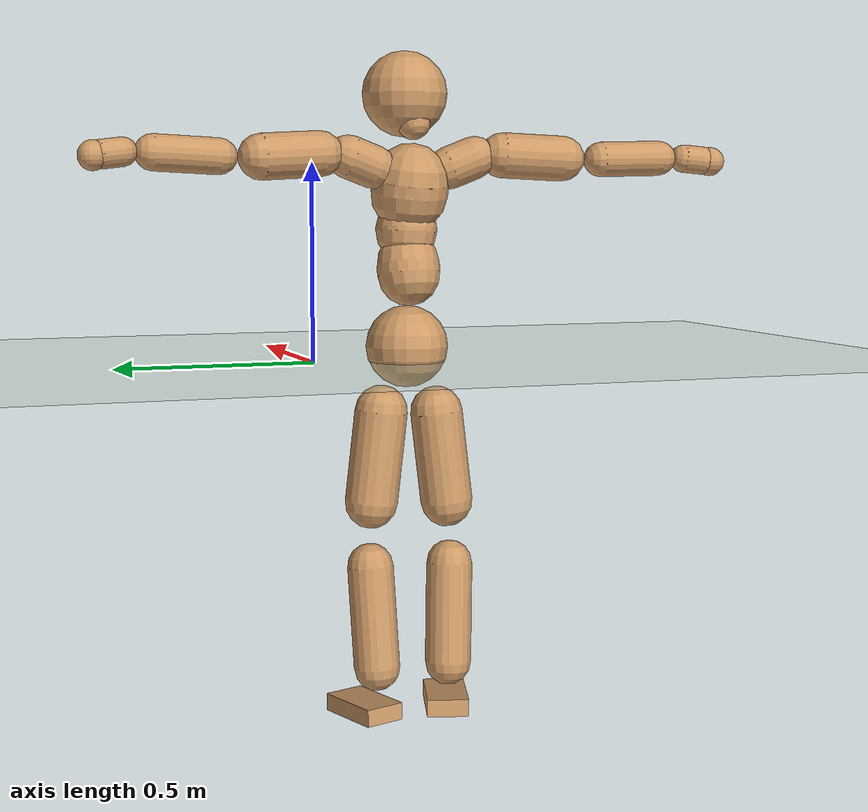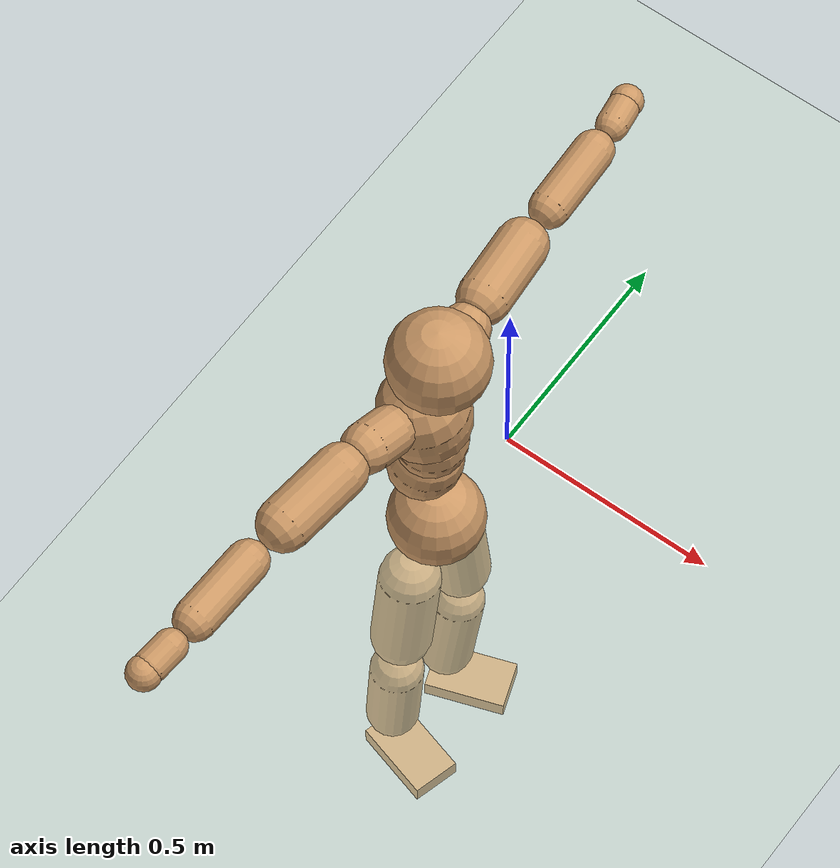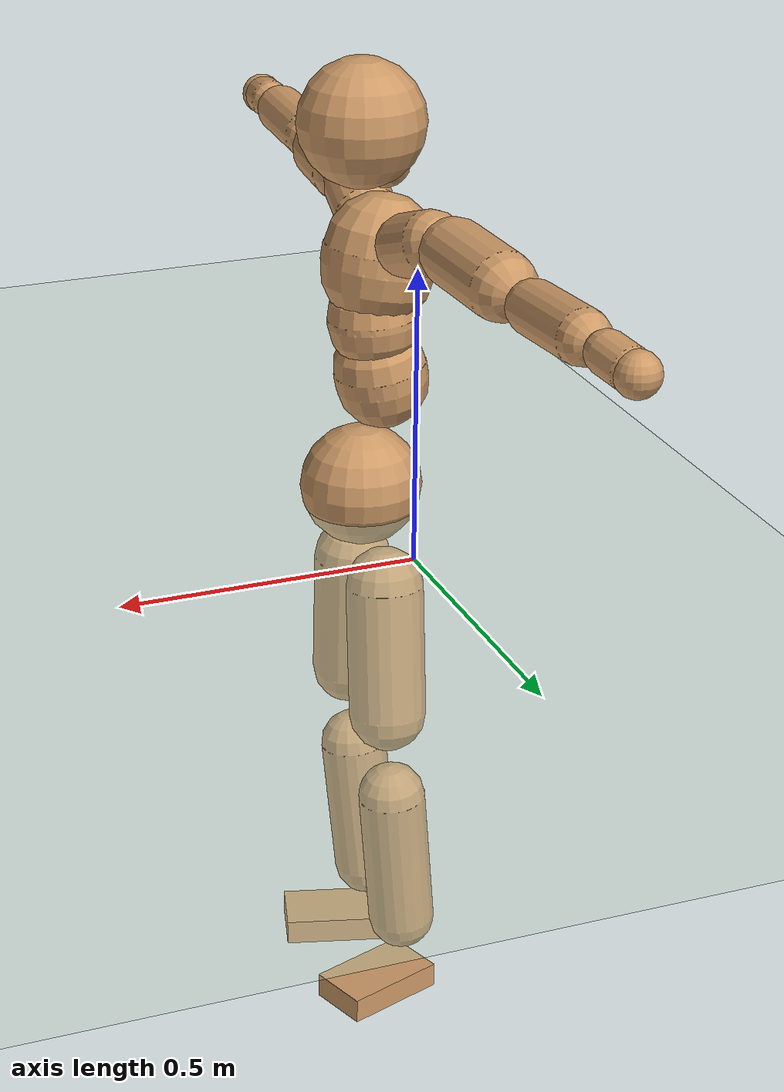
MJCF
<mujoco model="humanoid">
  <compiler coordinate="local"/>
  <default>
    <joint damping="0.0" armature="0.01" stiffness="0.0" limited="true"/>
    <geom conaffinity="1" condim="3" contype="7" margin="0.001" rgba="0.8 0.6 .4 1"/>
  </default>
  <asset>
    <texture type="skybox" builtin="gradient" rgb1=".4 .5 .6" rgb2="0 0 0" width="100" height="100"/>
    <texture builtin="flat" height="1278" mark="cross" markrgb="1 1 1" name="texgeom" random="0.01" rgb1="0.8 0.6 0.4" rgb2="0.8 0.6 0.4" type="cube" width="127"/>
    <texture builtin="checker" height="100" name="texplane" rgb1="0 0 0" rgb2="0.8 0.8 0.8" type="2d" width="100"/>
    <material name="MatPlane" reflectance="0.5" shininess="1" specular="1" texrepeat="60 60" texture="texplane"/>
    <material name="geom" texture="texgeom" texuniform="true"/>
  </asset>
  <worldbody>
    <light cutoff="100" diffuse="1 1 1" dir="-0 0 -1.3" directional="true" exponent="1" pos="0 0 1.3" specular=".1 .1 .1"/>
    <geom conaffinity="1" condim="3" name="floor" pos="0 0 0" rgba="0.8 0.9 0.8 1" size="100 100 .2" type="plane" material="MatPlane"/>
    <body name="Pelvis" pos="-0.0009 -0.2475 0.0358">
      <freejoint name="Pelvis"/>
      <geom type="sphere" contype="1" conaffinity="1" density="500" size="0.1048" pos="0.0000 0.0000 0.0000" name="Pelvis"/>
      <body name="L_Hip" pos="-0.0163 0.0653 -0.0851">
        <joint name="L_Hip_x" type="hinge" pos="0 0 0" axis="1 0 0" stiffness="800" damping="80" armature="0.02" range="-180.0000 180.0000"/>
        <joint name="L_Hip_y" type="hinge" pos="0 0 0" axis="0 1 0" stiffness="800" damping="80" armature="0.02" range="-180.0000 180.0000"/>
        <joint name="L_Hip_z" type="hinge" pos="0 0 0" axis="0 0 1" stiffness="800" damping="80" armature="0.02" range="-180.0000 180.0000"/>
        <geom type="capsule" contype="1" conaffinity="1" density="500" fromto="0.0010 0.0087 -0.0780 0.0040 0.0347 -0.3120" size="0.0674" name="L_Hip"/>
        <body name="L_Knee" pos="0.005 0.0433 -0.39">
          <joint name="L_Knee_x" type="hinge" pos="0 0 0" axis="1 0 0" stiffness="800" damping="80" armature="0.02" range="-180.0000 180.0000"/>
          <joint name="L_Knee_y" type="hinge" pos="0 0 0" axis="0 1 0" stiffness="800" damping="80" armature="0.02" range="-180.0000 180.0000"/>
          <joint name="L_Knee_z" type="hinge" pos="0 0 0" axis="0 0 1" stiffness="800" damping="80" armature="0.02" range="-180.0000 180.0000"/>
          <geom type="capsule" contype="1" conaffinity="1" density="500" fromto="-0.0080 -0.0032 -0.0870 -0.0322 -0.0127 -0.3481" size="0.0591" name="L_Knee"/>
          <body name="L_Ankle" pos="-0.0402 -0.0158 -0.4352">
            <joint name="L_Ankle_x" type="hinge" pos="0 0 0" axis="1 0 0" stiffness="800" damping="80" armature="0.02" range="-180.0000 180.0000"/>
            <joint name="L_Ankle_y" type="hinge" pos="0 0 0" axis="0 1 0" stiffness="800" damping="80" armature="0.02" range="-180.0000 180.0000"/>
            <joint name="L_Ankle_z" type="hinge" pos="0 0 0" axis="0 0 1" stiffness="800" damping="80" armature="0.02" range="-180.0000 180.0000"/>
            <geom type="box" contype="1" conaffinity="1" density="500" pos="0.0622 0.0214 -0.0309" size="0.0916 0.0545 0.0222" quat="0.9863 0.0000 0.0000 0.1652" name="L_Ankle"/>
            <body name="L_Toe" pos="0.1244 0.0429 -0.0618">
              <joint name="L_Toe_x" type="hinge" pos="0 0 0" axis="1 0 0" stiffness="500" damping="50" armature="0.02" range="-180.0000 180.0000"/>
              <joint name="L_Toe_y" type="hinge" pos="0 0 0" axis="0 1 0" stiffness="500" damping="50" armature="0.02" range="-180.0000 180.0000"/>
              <joint name="L_Toe_z" type="hinge" pos="0 0 0" axis="0 0 1" stiffness="500" damping="50" armature="0.02" range="-180.0000 180.0000"/>
              <geom type="box" contype="1" conaffinity="1" density="500" pos="0.0000 0.0000 0.0302" size="0.0011 0.0026 0.0011" quat="0.9855 0.0000 0.0000 0.1698" name="L_Toe"/>
            </body>
          </body>
        </body>
      </body>
      <body name="R_Hip" pos="-0.0116 -0.0669 -0.0931">
        <joint name="R_Hip_x" type="hinge" pos="0 0 0" axis="1 0 0" stiffness="800" damping="80" armature="0.02" range="-180.0000 180.0000"/>
        <joint name="R_Hip_y" type="hinge" pos="0 0 0" axis="0 1 0" stiffness="800" damping="80" armature="0.02" range="-180.0000 180.0000"/>
        <joint name="R_Hip_z" type="hinge" pos="0 0 0" axis="0 0 1" stiffness="800" damping="80" armature="0.02" range="-180.0000 180.0000"/>
        <geom type="capsule" contype="1" conaffinity="1" density="500" fromto="-0.0016 -0.0088 -0.0776 -0.0066 -0.0351 -0.3102" size="0.0669" name="R_Hip"/>
        <body name="R_Knee" pos="-0.0082 -0.0439 -0.3878">
          <joint name="R_Knee_x" type="hinge" pos="0 0 0" axis="1 0 0" stiffness="800" damping="80" armature="0.02" range="-180.0000 180.0000"/>
          <joint name="R_Knee_y" type="hinge" pos="0 0 0" axis="0 1 0" stiffness="800" damping="80" armature="0.02" range="-180.0000 180.0000"/>
          <joint name="R_Knee_z" type="hinge" pos="0 0 0" axis="0 0 1" stiffness="800" damping="80" armature="0.02" range="-180.0000 180.0000"/>
          <geom type="capsule" contype="1" conaffinity="1" density="500" fromto="-0.0076 0.0038 -0.0856 -0.0305 0.0151 -0.3423" size="0.0593" name="R_Knee"/>
          <body name="R_Ankle" pos="-0.0382 0.0189 -0.4279">
            <joint name="R_Ankle_x" type="hinge" pos="0 0 0" axis="1 0 0" stiffness="800" damping="80" armature="0.02" range="-180.0000 180.0000"/>
            <joint name="R_Ankle_y" type="hinge" pos="0 0 0" axis="0 1 0" stiffness="800" damping="80" armature="0.02" range="-180.0000 180.0000"/>
            <joint name="R_Ankle_z" type="hinge" pos="0 0 0" axis="0 0 1" stiffness="800" damping="80" armature="0.02" range="-180.0000 180.0000"/>
            <geom type="box" contype="1" conaffinity="1" density="500" pos="0.0665 -0.0188 -0.0311" size="0.0932 0.054 0.0226" quat="0.9905 0.0000 0.0000 -0.1374" name="R_Ankle"/>
            <body name="R_Toe" pos="0.1331 -0.0377 -0.0623">
              <joint name="R_Toe_x" type="hinge" pos="0 0 0" axis="1 0 0" stiffness="500" damping="50" armature="0.02" range="-180.0000 180.0000"/>
              <joint name="R_Toe_y" type="hinge" pos="0 0 0" axis="0 1 0" stiffness="500" damping="50" armature="0.02" range="-180.0000 180.0000"/>
              <joint name="R_Toe_z" type="hinge" pos="0 0 0" axis="0 0 1" stiffness="500" damping="50" armature="0.02" range="-180.0000 180.0000"/>
              <geom type="box" contype="1" conaffinity="1" density="500" pos="0.0000 0.0000 0.0319" size="0.0011 0.0026 0.0012" quat="0.9917 0.0000 0.0000 -0.1287" name="R_Toe"/>
            </body>
          </body>
        </body>
      </body>
      <body name="Torso" pos="-0.0458 0.0046 0.129">
        <joint name="Torso_x" type="hinge" pos="0 0 0" axis="1 0 0" stiffness="1000" damping="100" armature="0.02" range="-180.0000 180.0000"/>
        <joint name="Torso_y" type="hinge" pos="0 0 0" axis="0 1 0" stiffness="1000" damping="100" armature="0.02" range="-180.0000 180.0000"/>
        <joint name="Torso_z" type="hinge" pos="0 0 0" axis="0 0 1" stiffness="1000" damping="100" armature="0.02" range="-180.0000 180.0000"/>
        <geom type="capsule" contype="1" conaffinity="1" density="500" fromto="0.0157 0.0025 0.0835 0.0105 0.0017 0.0556" size="0.079236" name="Torso"/>
        <body name="Spine" pos="0.0262 0.0042 0.1391">
          <joint name="Spine_x" type="hinge" pos="0 0 0" axis="1 0 0" stiffness="1000" damping="100" armature="0.02" range="-180.0000 180.0000"/>
          <joint name="Spine_y" type="hinge" pos="0 0 0" axis="0 1 0" stiffness="1000" damping="100" armature="0.02" range="-180.0000 180.0000"/>
          <joint name="Spine_z" type="hinge" pos="0 0 0" axis="0 0 1" stiffness="1000" damping="100" armature="0.02" range="-180.0000 180.0000"/>
          <geom type="capsule" contype="1" conaffinity="1" density="500" fromto="0.0019 -0.0018 0.0343 0.0013 -0.0012 0.0229" size="0.07719" name="Spine"/>
          <body name="Chest" pos="0.0031 -0.003 0.0571">
            <joint name="Chest_x" type="hinge" pos="0 0 0" axis="1 0 0" stiffness="1000" damping="100" armature="0.02" range="-180.0000 180.0000"/>
            <joint name="Chest_y" type="hinge" pos="0 0 0" axis="0 1 0" stiffness="1000" damping="100" armature="0.02" range="-180.0000 180.0000"/>
            <joint name="Chest_z" type="hinge" pos="0 0 0" axis="0 0 1" stiffness="1000" damping="100" armature="0.02" range="-180.0000 180.0000"/>
            <geom type="capsule" contype="1" conaffinity="1" density="500" fromto="-0.0167 -0.0046 0.0907 -0.0112 -0.0031 0.0605" size="0.096999" name="Chest"/>
            <body name="Neck" pos="-0.036 -0.0119 0.2194">
              <joint name="Neck_x" type="hinge" pos="0 0 0" axis="1 0 0" stiffness="500" damping="50" armature="0.02" range="-180.0000 180.0000"/>
              <joint name="Neck_y" type="hinge" pos="0 0 0" axis="0 1 0" stiffness="500" damping="50" armature="0.02" range="-180.0000 180.0000"/>
              <joint name="Neck_z" type="hinge" pos="0 0 0" axis="0 0 1" stiffness="500" damping="50" armature="0.02" range="-180.0000 180.0000"/>
              <geom type="capsule" contype="1" conaffinity="1" density="500" fromto="0.0109 0.0022 0.0181 0.0438 0.0087 0.0724" size="0.042873" name="Neck"/>
              <body name="Head" pos="0.0547 0.0108 0.0905">
                <joint name="Head_x" type="hinge" pos="0 0 0" axis="1 0 0" stiffness="500" damping="50" armature="0.02" range="-180.0000 180.0000"/>
                <joint name="Head_y" type="hinge" pos="0 0 0" axis="0 1 0" stiffness="500" damping="50" armature="0.02" range="-180.0000 180.0000"/>
                <joint name="Head_z" type="hinge" pos="0 0 0" axis="0 0 1" stiffness="500" damping="50" armature="0.02" range="-180.0000 180.0000"/>
                <geom type="sphere" contype="1" conaffinity="1" density="500" size="0.1073" pos="0.0000 0.0000 0.0000" name="Head"/>
              </body>
            </body>
            <body name="L_Thorax" pos="-0.0214 0.0687 0.1178">
              <joint name="L_Thorax_x" type="hinge" pos="0 0 0" axis="1 0 0" stiffness="500" damping="50" armature="0.02" range="-180.0000 180.0000"/>
              <joint name="L_Thorax_y" type="hinge" pos="0 0 0" axis="0 1 0" stiffness="500" damping="50" armature="0.02" range="-180.0000 180.0000"/>
              <joint name="L_Thorax_z" type="hinge" pos="0 0 0" axis="0 0 1" stiffness="500" damping="50" armature="0.02" range="-180.0000 180.0000"/>
              <geom type="capsule" contype="1" conaffinity="1" density="500" fromto="-0.0039 0.0238 0.0085 -0.0155 0.0951 0.0340" size="0.0536" name="L_Thorax"/>
              <body name="L_Shoulder" pos="-0.0194 0.1188 0.0425">
                <joint name="L_Shoulder_x" type="hinge" pos="0 0 0" axis="1 0 0" stiffness="500" damping="50" armature="0.02" range="-720.0000 720.0000"/>
                <joint name="L_Shoulder_y" type="hinge" pos="0 0 0" axis="0 1 0" stiffness="500" damping="50" armature="0.02" range="-720.0000 720.0000"/>
                <joint name="L_Shoulder_z" type="hinge" pos="0 0 0" axis="0 0 1" stiffness="500" damping="50" armature="0.02" range="-720.0000 720.0000"/>
                <geom type="capsule" contype="1" conaffinity="1" density="500" fromto="-0.0047 0.0501 -0.0028 -0.0190 0.2005 -0.0111" size="0.0567" name="L_Shoulder"/>
                <body name="L_Elbow" pos="-0.0237 0.2507 -0.0139">
                  <joint name="L_Elbow_x" type="hinge" pos="0 0 0" axis="1 0 0" stiffness="500" damping="50" armature="0.02" range="-720.0000 720.0000"/>
                  <joint name="L_Elbow_y" type="hinge" pos="0 0 0" axis="0 1 0" stiffness="500" damping="50" armature="0.02" range="-720.0000 720.0000"/>
                  <joint name="L_Elbow_z" type="hinge" pos="0 0 0" axis="0 0 1" stiffness="500" damping="50" armature="0.02" range="-720.0000 720.0000"/>
                  <geom type="capsule" contype="1" conaffinity="1" density="500" fromto="-0.0014 0.0531 0.0026 -0.0055 0.2123 0.0106" size="0.0438" name="L_Elbow"/>
                  <body name="L_Wrist" pos="-0.0068 0.2654 0.0132">
                    <joint name="L_Wrist_x" type="hinge" pos="0 0 0" axis="1 0 0" stiffness="300" damping="30" armature="0.02" range="-180.0000 180.0000"/>
                    <joint name="L_Wrist_y" type="hinge" pos="0 0 0" axis="0 1 0" stiffness="300" damping="30" armature="0.02" range="-180.0000 180.0000"/>
                    <joint name="L_Wrist_z" type="hinge" pos="0 0 0" axis="0 0 1" stiffness="300" damping="30" armature="0.02" range="-180.0000 180.0000"/>
                    <geom type="capsule" contype="1" conaffinity="1" density="500" fromto="-0.0032 0.0176 -0.0022 -0.0126 0.0703 -0.0088" size="0.0348" name="L_Wrist"/>
                    <body name="L_Hand" pos="-0.0158 0.0878 -0.011">
                      <joint name="L_Hand_x" type="hinge" pos="0 0 0" axis="1 0 0" stiffness="300" damping="30" armature="0.02" range="-180.0000 180.0000"/>
                      <joint name="L_Hand_y" type="hinge" pos="0 0 0" axis="0 1 0" stiffness="300" damping="30" armature="0.02" range="-180.0000 180.0000"/>
                      <joint name="L_Hand_z" type="hinge" pos="0 0 0" axis="0 0 1" stiffness="300" damping="30" armature="0.02" range="-180.0000 180.0000"/>
                      <geom type="sphere" contype="1" conaffinity="1" density="500" size="0.0361" pos="0.0000 0.0000 0.0000" name="L_Hand"/>
                    </body>
                  </body>
                </body>
              </body>
            </body>
            <body name="R_Thorax" pos="-0.0262 -0.0798 0.1164">
              <joint name="R_Thorax_x" type="hinge" pos="0 0 0" axis="1 0 0" stiffness="500" damping="50" armature="0.02" range="-180.0000 180.0000"/>
              <joint name="R_Thorax_y" type="hinge" pos="0 0 0" axis="0 1 0" stiffness="500" damping="50" armature="0.02" range="-180.0000 180.0000"/>
              <joint name="R_Thorax_z" type="hinge" pos="0 0 0" axis="0 0 1" stiffness="500" damping="50" armature="0.02" range="-180.0000 180.0000"/>
              <geom type="capsule" contype="1" conaffinity="1" density="500" fromto="-0.0018 -0.0222 0.0089 -0.0070 -0.0887 0.0354" size="0.054" name="R_Thorax"/>
              <body name="R_Shoulder" pos="-0.0088 -0.1109 0.0443">
                <joint name="R_Shoulder_x" type="hinge" pos="0 0 0" axis="1 0 0" stiffness="500" damping="50" armature="0.02" range="-720.0000 720.0000"/>
                <joint name="R_Shoulder_y" type="hinge" pos="0 0 0" axis="0 1 0" stiffness="500" damping="50" armature="0.02" range="-720.0000 720.0000"/>
                <joint name="R_Shoulder_z" type="hinge" pos="0 0 0" axis="0 0 1" stiffness="500" damping="50" armature="0.02" range="-720.0000 720.0000"/>
                <geom type="capsule" contype="1" conaffinity="1" density="500" fromto="-0.0067 -0.0516 -0.0026 -0.0268 -0.2065 -0.0104" size="0.0575" name="R_Shoulder"/>
                <body name="R_Elbow" pos="-0.0335 -0.2581 -0.013">
                  <joint name="R_Elbow_x" type="hinge" pos="0 0 0" axis="1 0 0" stiffness="500" damping="50" armature="0.02" range="-720.0000 720.0000"/>
                  <joint name="R_Elbow_y" type="hinge" pos="0 0 0" axis="0 1 0" stiffness="500" damping="50" armature="0.02" range="-720.0000 720.0000"/>
                  <joint name="R_Elbow_z" type="hinge" pos="0 0 0" axis="0 0 1" stiffness="500" damping="50" armature="0.02" range="-720.0000 720.0000"/>
                  <geom type="capsule" contype="1" conaffinity="1" density="500" fromto="-0.0014 -0.0540 0.0014 -0.0055 -0.2159 0.0056" size="0.0445" name="R_Elbow"/>
                  <body name="R_Wrist" pos="-0.0069 -0.2699 0.007">
                    <joint name="R_Wrist_x" type="hinge" pos="0 0 0" axis="1 0 0" stiffness="300" damping="30" armature="0.02" range="-180.0000 180.0000"/>
                    <joint name="R_Wrist_y" type="hinge" pos="0 0 0" axis="0 1 0" stiffness="300" damping="30" armature="0.02" range="-180.0000 180.0000"/>
                    <joint name="R_Wrist_z" type="hinge" pos="0 0 0" axis="0 0 1" stiffness="300" damping="30" armature="0.02" range="-180.0000 180.0000"/>
                    <geom type="capsule" contype="1" conaffinity="1" density="500" fromto="-0.0020 -0.0182 -0.0018 -0.0082 -0.0727 -0.0072" size="0.0358" name="R_Wrist"/>
                    <body name="R_Hand" pos="-0.0102 -0.0909 -0.009">
                      <joint name="R_Hand_x" type="hinge" pos="0 0 0" axis="1 0 0" stiffness="300" damping="30" armature="0.02" range="-180.0000 180.0000"/>
                      <joint name="R_Hand_y" type="hinge" pos="0 0 0" axis="0 1 0" stiffness="300" damping="30" armature="0.02" range="-180.0000 180.0000"/>
                      <joint name="R_Hand_z" type="hinge" pos="0 0 0" axis="0 0 1" stiffness="300" damping="30" armature="0.02" range="-180.0000 180.0000"/>
                      <geom type="sphere" contype="1" conaffinity="1" density="500" size="0.0370" pos="0.0000 0.0000 0.0000" name="R_Hand"/>
                    </body>
                  </body>
                </body>
              </body>
            </body>
          </body>
        </body>
      </body>
    </body>
  </worldbody>
  <actuator>
    <motor name="L_Hip_x" joint="L_Hip_x" gear="500"/>
    <motor name="L_Hip_y" joint="L_Hip_y" gear="500"/>
    <motor name="L_Hip_z" joint="L_Hip_z" gear="500"/>
    <motor name="L_Knee_x" joint="L_Knee_x" gear="500"/>
    <motor name="L_Knee_y" joint="L_Knee_y" gear="500"/>
    <motor name="L_Knee_z" joint="L_Knee_z" gear="500"/>
    <motor name="L_Ankle_x" joint="L_Ankle_x" gear="500"/>
    <motor name="L_Ankle_y" joint="L_Ankle_y" gear="500"/>
    <motor name="L_Ankle_z" joint="L_Ankle_z" gear="500"/>
    <motor name="L_Toe_x" joint="L_Toe_x" gear="500"/>
    <motor name="L_Toe_y" joint="L_Toe_y" gear="500"/>
    <motor name="L_Toe_z" joint="L_Toe_z" gear="500"/>
    <motor name="R_Hip_x" joint="R_Hip_x" gear="500"/>
    <motor name="R_Hip_y" joint="R_Hip_y" gear="500"/>
    <motor name="R_Hip_z" joint="R_Hip_z" gear="500"/>
    <motor name="R_Knee_x" joint="R_Knee_x" gear="500"/>
    <motor name="R_Knee_y" joint="R_Knee_y" gear="500"/>
    <motor name="R_Knee_z" joint="R_Knee_z" gear="500"/>
    <motor name="R_Ankle_x" joint="R_Ankle_x" gear="500"/>
    <motor name="R_Ankle_y" joint="R_Ankle_y" gear="500"/>
    <motor name="R_Ankle_z" joint="R_Ankle_z" gear="500"/>
    <motor name="R_Toe_x" joint="R_Toe_x" gear="500"/>
    <motor name="R_Toe_y" joint="R_Toe_y" gear="500"/>
    <motor name="R_Toe_z" joint="R_Toe_z" gear="500"/>
    <motor name="Torso_x" joint="Torso_x" gear="500"/>
    <motor name="Torso_y" joint="Torso_y" gear="500"/>
    <motor name="Torso_z" joint="Torso_z" gear="500"/>
    <motor name="Spine_x" joint="Spine_x" gear="500"/>
    <motor name="Spine_y" joint="Spine_y" gear="500"/>
    <motor name="Spine_z" joint="Spine_z" gear="500"/>
    <motor name="Chest_x" joint="Chest_x" gear="500"/>
    <motor name="Chest_y" joint="Chest_y" gear="500"/>
    <motor name="Chest_z" joint="Chest_z" gear="500"/>
    <motor name="Neck_x" joint="Neck_x" gear="500"/>
    <motor name="Neck_y" joint="Neck_y" gear="500"/>
    <motor name="Neck_z" joint="Neck_z" gear="500"/>
    <motor name="Head_x" joint="Head_x" gear="500"/>
    <motor name="Head_y" joint="Head_y" gear="500"/>
    <motor name="Head_z" joint="Head_z" gear="500"/>
    <motor name="L_Thorax_x" joint="L_Thorax_x" gear="500"/>
    <motor name="L_Thorax_y" joint="L_Thorax_y" gear="500"/>
    <motor name="L_Thorax_z" joint="L_Thorax_z" gear="500"/>
    <motor name="L_Shoulder_x" joint="L_Shoulder_x" gear="500"/>
    <motor name="L_Shoulder_y" joint="L_Shoulder_y" gear="500"/>
    <motor name="L_Shoulder_z" joint="L_Shoulder_z" gear="500"/>
    <motor name="L_Elbow_x" joint="L_Elbow_x" gear="500"/>
    <motor name="L_Elbow_y" joint="L_Elbow_y" gear="500"/>
    <motor name="L_Elbow_z" joint="L_Elbow_z" gear="500"/>
    <motor name="L_Wrist_x" joint="L_Wrist_x" gear="500"/>
    <motor name="L_Wrist_y" joint="L_Wrist_y" gear="500"/>
    <motor name="L_Wrist_z" joint="L_Wrist_z" gear="500"/>
    <motor name="L_Hand_x" joint="L_Hand_x" gear="500"/>
    <motor name="L_Hand_y" joint="L_Hand_y" gear="500"/>
    <motor name="L_Hand_z" joint="L_Hand_z" gear="500"/>
    <motor name="R_Thorax_x" joint="R_Thorax_x" gear="500"/>
    <motor name="R_Thorax_y" joint="R_Thorax_y" gear="500"/>
    <motor name="R_Thorax_z" joint="R_Thorax_z" gear="500"/>
    <motor name="R_Shoulder_x" joint="R_Shoulder_x" gear="500"/>
    <motor name="R_Shoulder_y" joint="R_Shoulder_y" gear="500"/>
    <motor name="R_Shoulder_z" joint="R_Shoulder_z" gear="500"/>
    <motor name="R_Elbow_x" joint="R_Elbow_x" gear="500"/>
    <motor name="R_Elbow_y" joint="R_Elbow_y" gear="500"/>
    <motor name="R_Elbow_z" joint="R_Elbow_z" gear="500"/>
    <motor name="R_Wrist_x" joint="R_Wrist_x" gear="500"/>
    <motor name="R_Wrist_y" joint="R_Wrist_y" gear="500"/>
    <motor name="R_Wrist_z" joint="R_Wrist_z" gear="500"/>
    <motor name="R_Hand_x" joint="R_Hand_x" gear="500"/>
    <motor name="R_Hand_y" joint="R_Hand_y" gear="500"/>
    <motor name="R_Hand_z" joint="R_Hand_z" gear="500"/>
  </actuator>
  <contact>
    <exclude body1="Torso" body2="Chest"/>
    <exclude body1="Head" body2="Chest"/>
    <exclude body1="R_Knee" body2="R_Toe"/>
    <exclude body1="R_Knee" body2="L_Ankle"/>
    <exclude body1="R_Knee" body2="L_Toe"/>
    <exclude body1="L_Knee" body2="L_Toe"/>
    <exclude body1="L_Knee" body2="R_Ankle"/>
    <exclude body1="L_Knee" body2="R_Toe"/>
    <exclude body1="L_Shoulder" body2="Chest"/>
    <exclude body1="R_Shoulder" body2="Chest"/>
  </contact>
  <sensor/>
  <size njmax="700" nconmax="700"/>
</mujoco>
